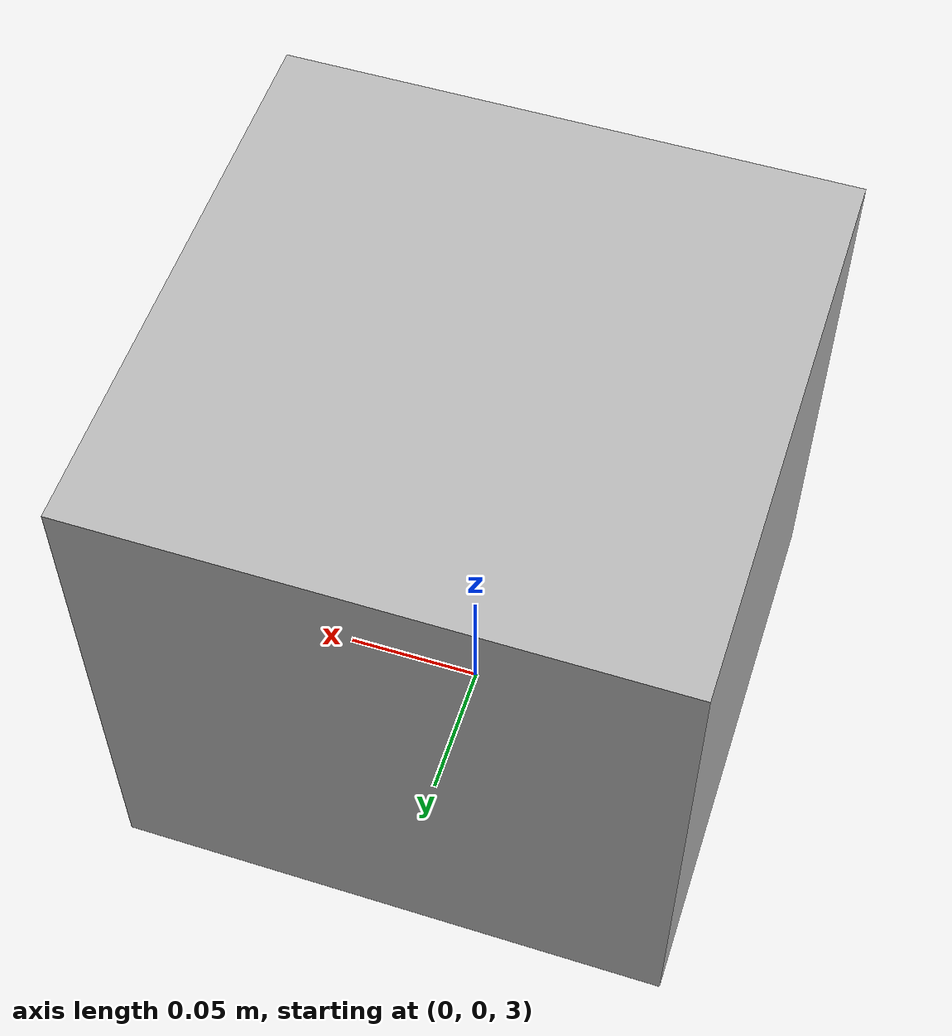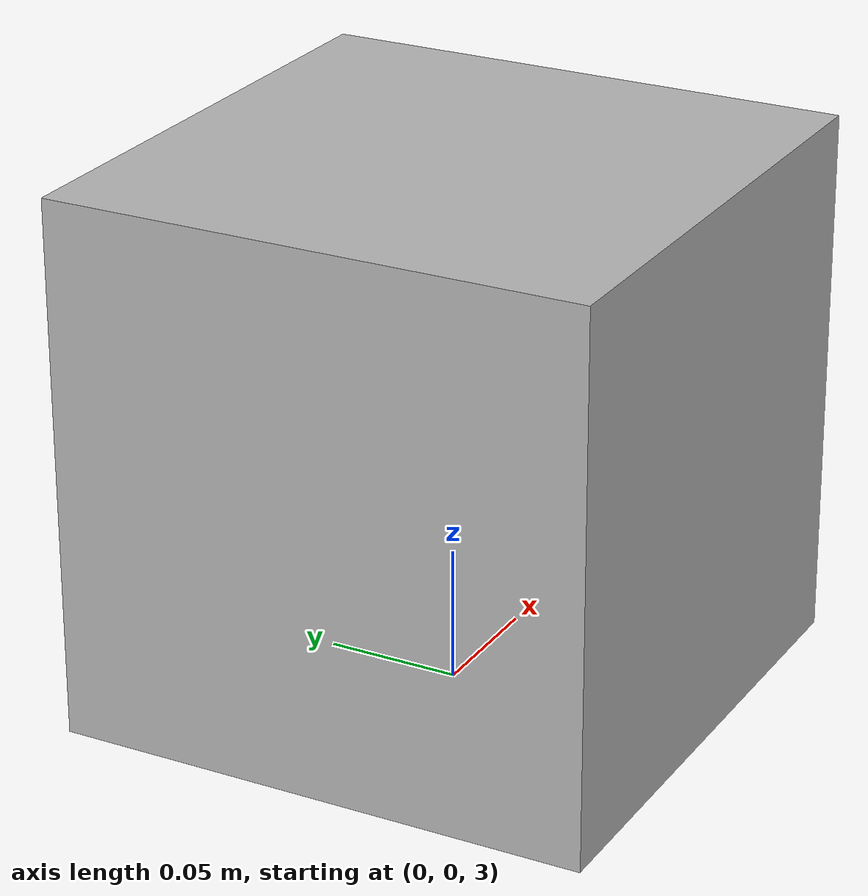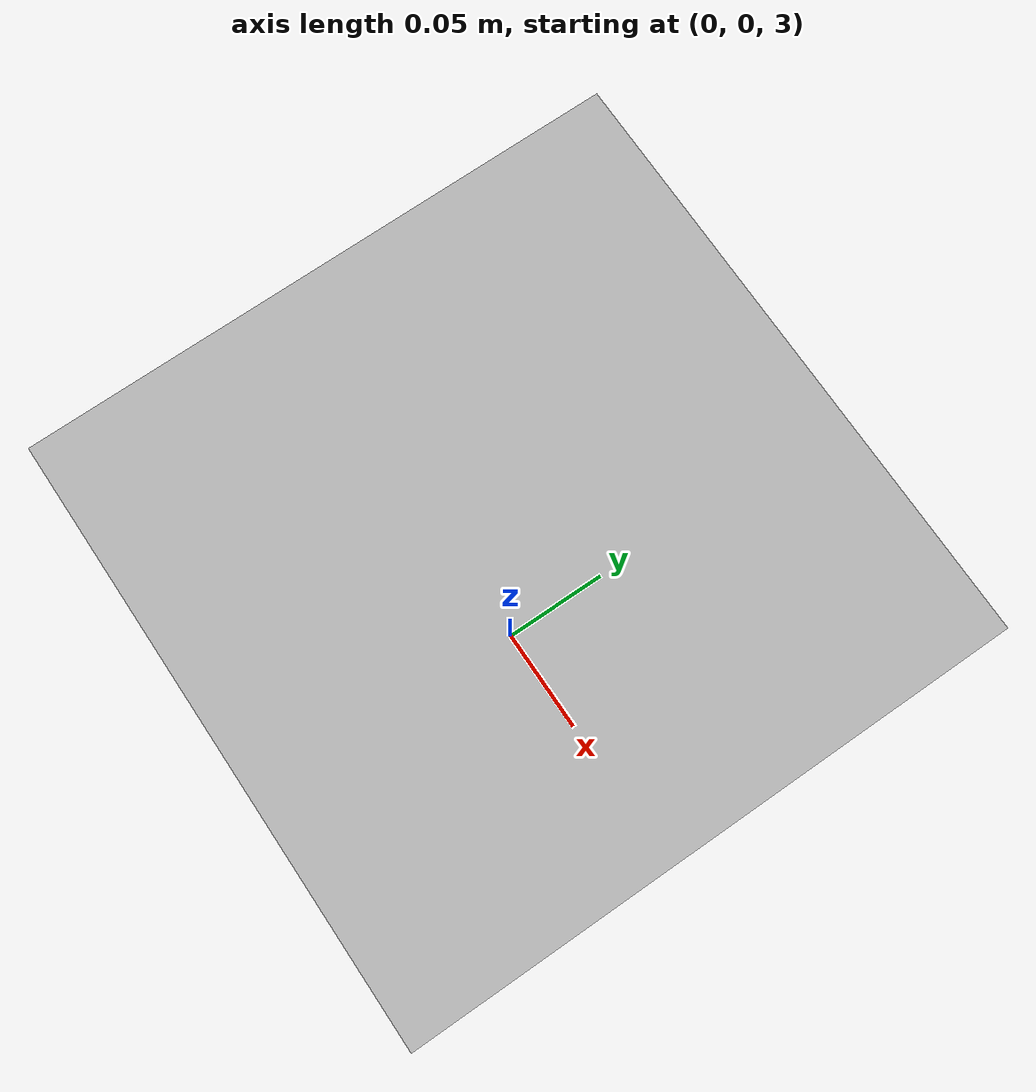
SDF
<?xml version="1.0" ?>
<sdf version="1.5">
  <world name="default">

      <gravity> 0 0 0 </gravity>

    <!-- A global light source -->
    <include>
      <uri>model://sun</uri>
    </include>
    <!-- A ground plane -->
    <include>
      <uri>model://ground_plane</uri>
    </include>
    <model name="velodyne">
      <pose>0 0 3.1 0 0 0</pose>
      <link name="link">
        <inertial>
          <mass>0.1</mass>
        </inertial>
        <collision name="collision">
          <geometry>
            <box>
              <size>0.2 0.2 0.2</size>
            </box>
          </geometry>
        </collision>
        <visual name="visual">
          <geometry>
            <box>
              <size>0.2 0.2 0.2</size>
            </box>
          </geometry>
        </visual>
        <sensor name="laser" type="ray">
          <pose>0.01 0 0.0175 1.57 -0 0</pose>
          <ray>
              <scan>
                  <horizontal>
                      <samples>2000</samples>
                      <resolution>1</resolution>
                      <min_angle>-0.52</min_angle>
                      <max_angle>0.52</max_angle>
                  </horizontal>
              </scan>
              <range>
                  <min>0.1</min>
                  <max>10</max>
                  <resolution>0.01</resolution>
              </range>
          </ray>
          <always_on>1</always_on>
          <update_rate>160</update_rate>
          <visualize>true</visualize>
        </sensor>
      </link>
    </model>
  </world>
</sdf>
